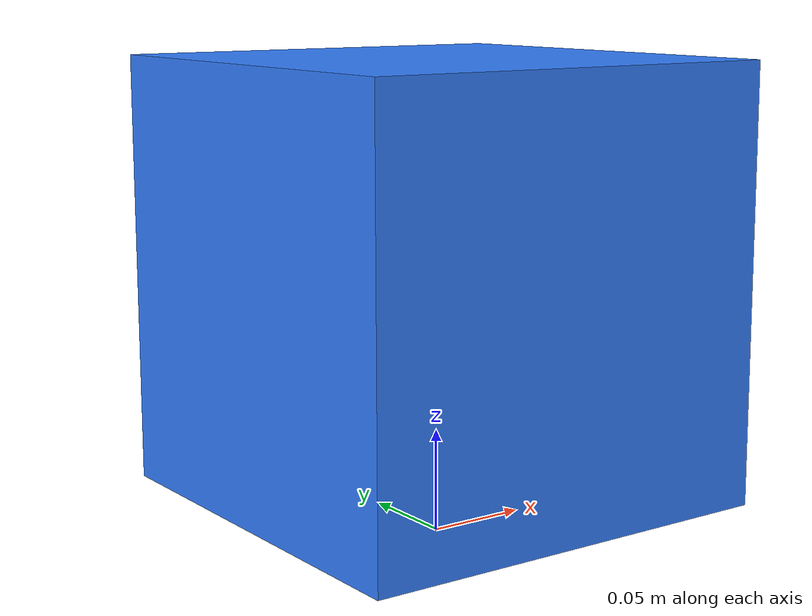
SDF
<?xml version="1.0"?>
<sdf version="1.9">
  <model name="small_box">
    <static>true</static>
    <link name="body">
      <!-- Lift the origin to the box base: pose = half-height up -->
      <pose>0 0 0.125 0 0 0</pose>
      <collision name="collision">
        <geometry>
          <box>
            <size>0.21 0.21 0.21</size>
          </box>
        </geometry>
      </collision>
      <visual name="visual">
        <geometry>
          <box>
            <size>0.21 0.21 0.21</size>
          </box>
        </geometry>
        <material>
          <diffuse>0.2 0.5 1.0 1.0</diffuse>
          <ambient>0.15 0.4 0.8 1.0</ambient>
        </material>
      </visual>
    </link>
  </model>
</sdf>
